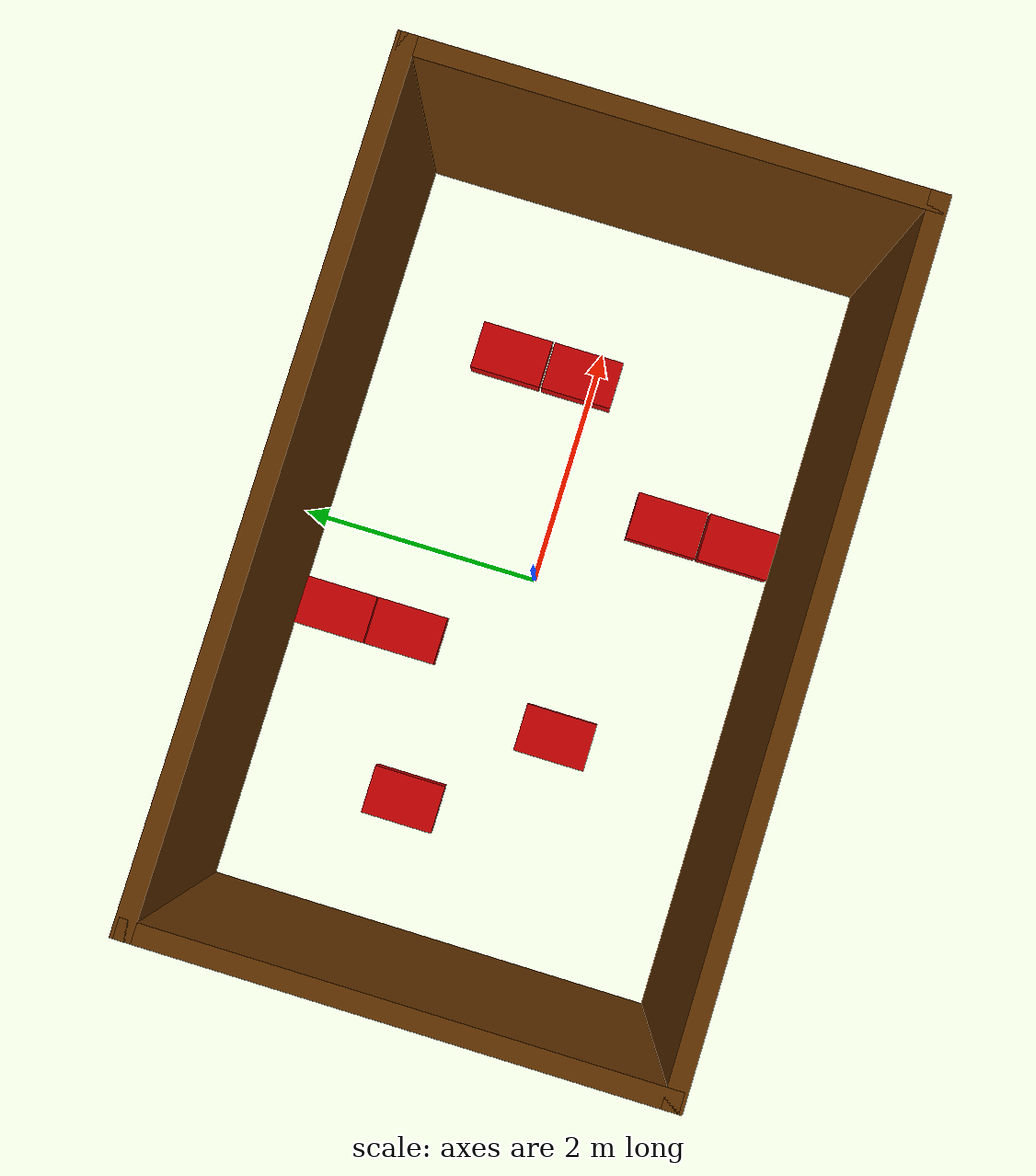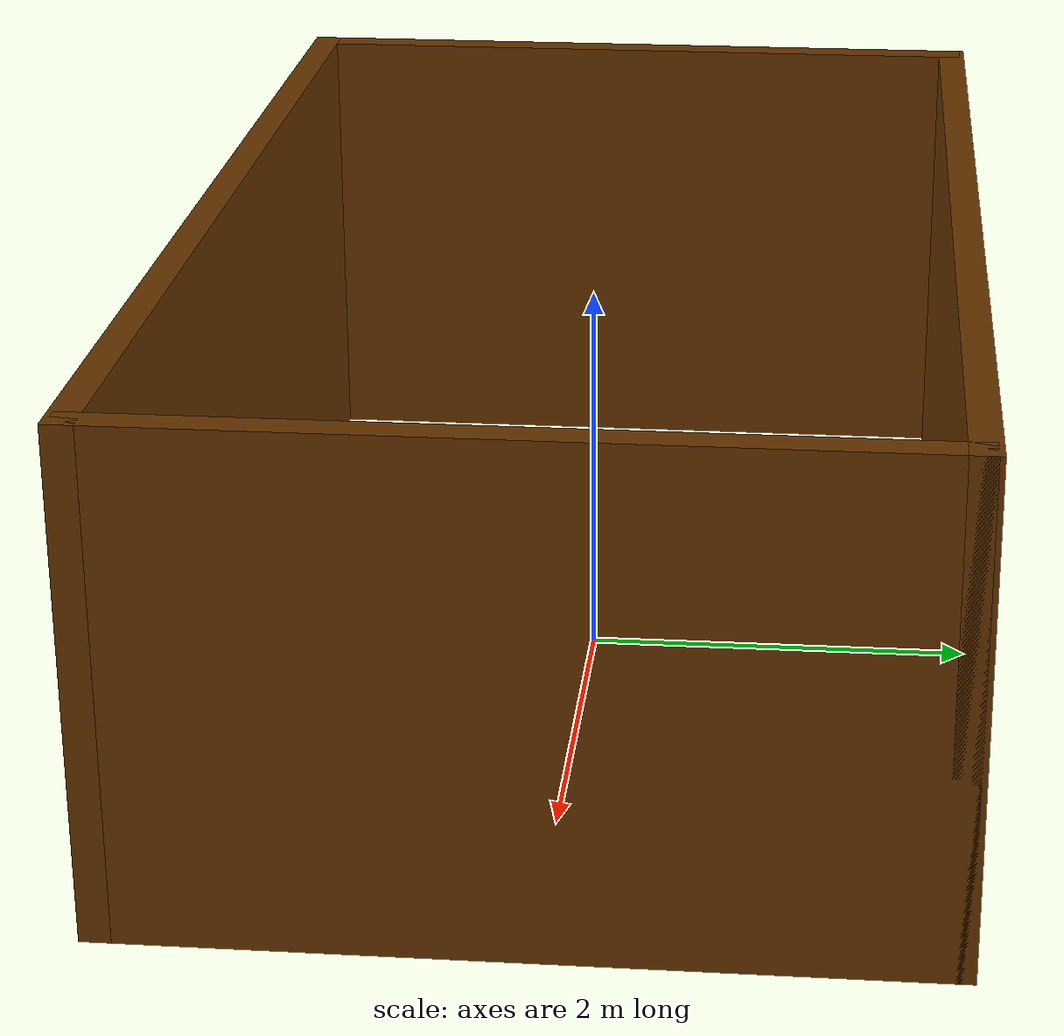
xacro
<?xml version="1.0" ?>
<robot xmlns:xacro="http://www.ros.org/wiki/xacro" name="arena">

  <link name="odom"></link>

  <joint name="polygon_base_joint" type="fixed">
      <origin xyz="0.0 0.0 0.0" />
      <parent link="odom" />
      <child link="polygon_base" />
  </joint>

  <link name="polygon_base">
        <visual>
            <origin xyz="0.0 0.0 0.0" rpy="0.0 0.0 0.0" />
            <geometry>
                <box size="0.01 0.01 0.01" />
            </geometry>
        </visual>
  </link>

  <xacro:include filename="arena_walls.xacro" />
  <xacro:include filename="boxes_layout.xacro" />

</robot>

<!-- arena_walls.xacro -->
<robot xmlns:xacro="http://www.ros.org/wiki/xacro">

    <material name="brown">
        <color rgba="0.4 0.2 0.0 1.0" />
    </material>

    <joint name="wall_1_joint" type="fixed">
        <origin xyz="-3.175 -0.025 1.25" rpy="0.0 0.0 -${pi/2}" />
        <parent link="polygon_base" />
        <child link="wall_1" />
    </joint>

    <link name="wall_1">
        <visual>
            <origin xyz="0.0 0.0 0.0" rpy="0.0 0.0 0.0" />
            <geometry>
                <box size="3.95 0.15 2.5" />
            </geometry>
            <material name="brown" />
        </visual>
    </link>

    <joint name="wall_2_joint" type="fixed">
        <origin xyz="0.0 1.9 1.25" />
        <parent link="polygon_base" />
        <child link="wall_2" />
    </joint>

    <link name="wall_2">
        <visual>
            <origin xyz="0.0 0.0 0.0" />
            <geometry>
                <box size="6.5 0.15 2.5" />
            </geometry>
            <material name="brown" />
        </visual>
    </link>

    <joint name="wall_3_joint" type="fixed">
        <origin xyz="3.175 -0.025 1.25" rpy="0.0 0.0 -${pi/2}" />
        <parent link="polygon_base" />
        <child link="wall_3" />
    </joint>

    <link name="wall_3">
        <visual>
            <origin xyz="0.0 0.0 0.0" rpy="0.0 0.0 0.0" />
            <geometry>
                <box size="3.95 0.15 2.5" />
            </geometry>
            <material name="brown" />
        </visual>
    </link>

    <joint name="wall_4_joint" type="fixed">
        <origin xyz="0.0 -1.95 1.25" />
        <parent link="polygon_base" />
        <child link="wall_4" />
    </joint>

    <link name="wall_4">
        <visual>
            <origin xyz="0.0 0.0 0.0" />
            <geometry>
                <box size="6.5 0.15 2.5" />
            </geometry>
            <material name="brown" />
        </visual>
    </link>

</robot>

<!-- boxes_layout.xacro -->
<robot xmlns:xacro="http://www.ros.org/wiki/xacro">

    <material name="red">
        <color rgba="0.8 0.0 0.0 1" />
    </material>

    <joint name="box_1_joint" type="fixed">
        <origin xyz="-2.05 0.5 0.1" />
        <parent link="polygon_base" />
        <child link="box_1" />
    </joint>

    <link name="box_1">
        <visual>
            <origin xyz="0.0 0.0 0.0" rpy="0.0 0.0 -${pi/2}" />
            <geometry>
                <box size="0.6 0.4 0.2" />
            </geometry>
            <material name="red" />
        </visual>
    </link>

    <joint name="box_2_joint" type="fixed">
        <origin xyz="-1.2 -0.55 0.1" />
        <parent link="polygon_base" />
        <child link="box_2" />
    </joint>

    <link name="box_2">
        <visual>
            <origin xyz="0.0 0.0 0.0" rpy="0.0 0.0 -${pi/2}" />
            <geometry>
                <box size="0.6 0.4 0.2" />
            </geometry>
            <material name="red" />
        </visual>
    </link>

    <joint name="box_3_joint" type="fixed">
        <origin xyz="-0.72 0.89 0.1" />
        <parent link="polygon_base" />
        <child link="box_3" />
    </joint>

    <link name="box_3">
        <visual>
            <origin xyz="0.0 0.0 0.0" rpy="0.0 0.0 -${pi/2}" />
            <geometry>
                <box size="0.6 0.4 0.2" />
            </geometry>
            <material name="red" />
        </visual>
    </link>

    <joint name="box_4_joint" type="fixed">
        <origin xyz="-0.72 1.5 0.1" />
        <parent link="polygon_base" />
        <child link="box_4" />
    </joint>

    <link name="box_4">
        <visual>
            <origin xyz="0.0 0.0 0.0" rpy="0.0 0.0 -${pi/2}" />
            <geometry>
                <box size="0.6 0.4 0.2" />
            </geometry>
            <material name="red" />
        </visual>
    </link>

    <joint name="box_5_joint" type="fixed">
        <origin xyz="0.75 -1.55 0.1" />
        <parent link="polygon_base" />
        <child link="box_5" />
    </joint>

    <link name="box_5">
        <visual>
            <origin xyz="0.0 0.0 0.0" rpy="0.0 0.0 -${pi/2}" />
            <geometry>
                <box size="0.6 0.4 0.2" />
            </geometry>
            <material name="red" />
        </visual>
    </link>

    <joint name="box_6_joint" type="fixed">
        <origin xyz="0.75 -0.93 0.1" />
        <parent link="polygon_base" />
        <child link="box_6" />
    </joint>

    <link name="box_6">
        <visual>
            <origin xyz="0.0 0.0 0.0" rpy="0.0 0.0 -${pi/2}" />
            <geometry>
                <box size="0.6 0.4 0.2" />
            </geometry>
            <material name="red" />
        </visual>
    </link>

    <joint name="box_7_joint" type="fixed">
        <origin xyz="1.75 0.11 0.1" />
        <parent link="polygon_base" />
        <child link="box_7" />
    </joint>

    <link name="box_7">
        <visual>
            <origin xyz="0.0 0.0 0.0" rpy="0.0 0.0 -${pi/2}" />
            <geometry>
                <box size="0.6 0.4 0.2" />
            </geometry>
            <material name="red" />
        </visual>
    </link>

    <joint name="box_8_joint" type="fixed">
        <origin xyz="1.75 0.73 0.1" />
        <parent link="polygon_base" />
        <child link="box_8" />
    </joint>

    <link name="box_8">
        <visual>
            <origin xyz="0.0 0.0 0.0" rpy="0.0 0.0 -${pi/2}" />
            <geometry>
                <box size="0.6 0.4 0.2" />
            </geometry>
            <material name="red" />
        </visual>
    </link>

</robot>
